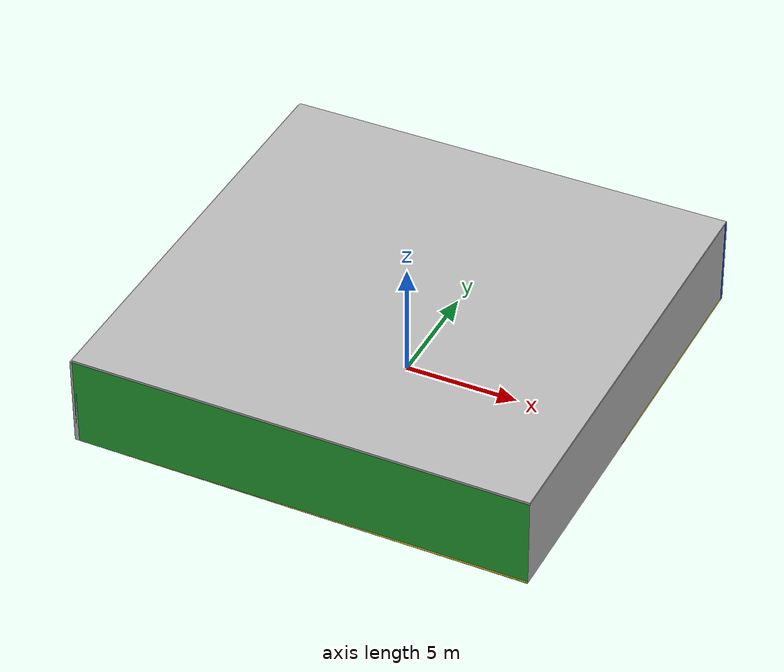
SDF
<sdf version="1.4">
 <world name="default">
  <physics type="ode">
   <max_step_size>0.001</max_step_size>
   <real_time_factor>1</real_time_factor>
   <real_time_update_rate>1000</real_time_update_rate>
   <gravity>0 0 -9.8</gravity>
  </physics>
  <scene><ambient>0.4 0.4 0.4 1</ambient><background>0.7 0.7 0.7 1</background><shadows>1</shadows></scene>
  <model name="Surrounding">
   <static>1</static>
   <link name="Ceiling">
    <collision name="Ceiling_Collision"><geometry><box><size>20 20 0.1</size></box></geometry></collision>
    <visual name="Ceiling_Visual">
     <geometry><box><size>20 20 0.1</size></box></geometry>
     <material>
      <script><uri>file://media/materials/scripts/gazebo.material</uri><name>Gazebo/Pioneer2Body</name></script>
     </material>
    </visual>
    <pose>0 0 4.05 0 0 0</pose>
   </link>
   <link name="Wall_South">
    <collision name="Wall_South_Collision">
     <geometry><box><size>20 0 4</size></box></geometry>
     <pose>0 0 2 0 -0 0</pose>
    </collision>
    <visual name="Wall_South_Visual">
     <pose>0 0 2 0 -0 0</pose>
     <geometry><box><size>20 0 4</size></box></geometry>
     <material>
      <script><uri>file://media/materials/scripts/gazebo.material</uri><name>Gazebo/GreenGlow</name></script>
     </material>
    </visual>
    <velocity_decay><linear>0</linear><angular>0</angular></velocity_decay>
    <pose>0 -10 0 0 -0 0</pose>
   </link>
   <link name="Wall_East">
    <collision name="Wall_21_Collision">
     <geometry><box><size>20 0 4</size></box></geometry>
     <pose>0 0 2 0 -0 0</pose>
    </collision>
    <visual name="Wall_21_Visual">
     <pose>0 0 2 0 -0 0</pose>
     <geometry><box><size>20 0 4</size></box></geometry>
     <material>
      <script><uri>file://media/materials/scripts/gazebo.material</uri><name>Gazebo/LightOn</name></script>
     </material>
    </visual>
    <velocity_decay><linear>0</linear><angular>0</angular></velocity_decay>
    <pose>10 0 0 0 -0 1.5708</pose>
   </link>
   <link name="Wall_North">
    <collision name="Wall_22_Collision">
     <geometry><box><size>20 0.2 4</size></box></geometry>
     <pose>0 0 2 0 -0 0</pose>
    </collision>
    <visual name="Wall_22_Visual">
     <pose>0 0 2 0 -0 0</pose>
     <geometry><box><size>20 0.2 4</size></box></geometry>
     <material>
      <script><uri>file://media/materials/scripts/gazebo.material</uri><name>Gazebo/BlueLaser</name></script>
     </material>
    </visual>
    <velocity_decay><linear>0</linear><angular>0</angular></velocity_decay>
    <pose>0 10 0 0 -0 0</pose>
   </link>
   <link name="Wall_West">
    <collision name="Wall_23_Collision">
     <geometry><box><size>20 0.2 4</size></box></geometry>
     <pose>0 0 2 0 -0 0</pose>
    </collision>
    <visual name="Wall_23_Visual">
     <pose>0 0 2 0 -0 0</pose>
     <geometry><box><size>20 0.2 4</size></box></geometry>
     <material>
      <script><uri>file://media/materials/scripts/gazebo.material</uri><name>Gazebo/CloudySky</name></script>
     </material>
    </visual>
    <velocity_decay><linear>0</linear><angular>0</angular></velocity_decay>
    <pose>-10 0 0 0 0 -1.5708</pose>
   </link>
   <link name="Ground_link">
    <collision name="collision">
     <pose>0 0 .05 0 -0 0</pose>
     <geometry><box><size>20 20 0.1</size></box></geometry>
    </collision>
    <visual name="visual">
     <pose>0 0 .05 0 -0 0</pose>
     <geometry><box><size>20 20 0.1</size></box></geometry>
     <material>
      <script><uri>file://media/materials/scripts/gazebo.material</uri><name>Gazebo/Yellow</name></script>
     </material>
    </visual>
   </link>
   <static>1</static>
  </model>
  <spherical_coordinates>
   <surface_model>EARTH_WGS84</surface_model>
   <latitude_deg>0</latitude_deg>
   <longitude_deg>0</longitude_deg>
   <elevation>0</elevation>
   <heading_deg>0</heading_deg>
  </spherical_coordinates>
  <light name="lightball_0" type="diffuse">
   <diffuse>0.8 0.8 0.8 1</diffuse>
   <specular>0.2 0.2 0.2 1</specular>
   <attenuation>
    <range>100</range>
    <constant>0.7</constant>
    <linear>0.01</linear>
    <quadratic>0.001</quadratic>
   </attenuation>
   <direction>-0.5 0.1 -0.9</direction>
   <pose>0.635790091996 -6.98932601665 3.45520818485 0 0 0</pose>
  </light>
  <light name="lightball_1" type="diffuse">
   <diffuse>0.8 0.8 0.8 1</diffuse>
   <specular>0.2 0.2 0.2 1</specular>
   <attenuation>
    <range>100</range>
    <constant>0.7</constant>
    <linear>0.01</linear>
    <quadratic>0.001</quadratic>
   </attenuation>
   <direction>-0.5 0.1 -0.9</direction>
   <pose>2.84061951563 5.09793412659 1.07602377094 0 0 0</pose>
  </light>
  <light name="lightball_2" type="diffuse">
   <diffuse>0.8 0.8 0.8 1</diffuse>
   <specular>0.2 0.2 0.2 1</specular>
   <attenuation>
    <range>100</range>
    <constant>0.7</constant>
    <linear>0.01</linear>
    <quadratic>0.001</quadratic>
   </attenuation>
   <direction>-0.5 0.1 -0.9</direction>
   <pose>9.69498057673 0.71310536121 1.66221764504 0 0 0</pose>
  </light>
  <light name="lightball_3" type="diffuse">
   <diffuse>0.8 0.8 0.8 1</diffuse>
   <specular>0.2 0.2 0.2 1</specular>
   <attenuation>
    <range>100</range>
    <constant>0.7</constant>
    <linear>0.01</linear>
    <quadratic>0.001</quadratic>
   </attenuation>
   <direction>-0.5 0.1 -0.9</direction>
   <pose>-8.94232352169 -4.17901317589 1.20630599728 0 0 0</pose>
  </light>
  <light name="lightball_4" type="diffuse">
   <diffuse>0.8 0.8 0.8 1</diffuse>
   <specular>0.2 0.2 0.2 1</specular>
   <attenuation>
    <range>100</range>
    <constant>0.7</constant>
    <linear>0.01</linear>
    <quadratic>0.001</quadratic>
   </attenuation>
   <direction>-0.5 0.1 -0.9</direction>
   <pose>-9.79133184987 -6.33414359005 1.75371324823 0 0 0</pose>
  </light>
  <light name="lightball_5" type="diffuse">
   <diffuse>0.8 0.8 0.8 1</diffuse>
   <specular>0.2 0.2 0.2 1</specular>
   <attenuation>
    <range>100</range>
    <constant>0.7</constant>
    <linear>0.01</linear>
    <quadratic>0.001</quadratic>
   </attenuation>
   <direction>-0.5 0.1 -0.9</direction>
   <pose>-4.20840883876 -2.2429179759 2.72129859994 0 0 0</pose>
  </light>
  <light name="lightball_6" type="diffuse">
   <diffuse>0.8 0.8 0.8 1</diffuse>
   <specular>0.2 0.2 0.2 1</specular>
   <attenuation>
    <range>100</range>
    <constant>0.7</constant>
    <linear>0.01</linear>
    <quadratic>0.001</quadratic>
   </attenuation>
   <direction>-0.5 0.1 -0.9</direction>
   <pose>8.14701366689 -3.69055051018 2.06331770871 0 0 0</pose>
  </light>
  <light name="lightball_7" type="diffuse">
   <diffuse>0.8 0.8 0.8 1</diffuse>
   <specular>0.2 0.2 0.2 1</specular>
   <attenuation>
    <range>100</range>
    <constant>0.7</constant>
    <linear>0.01</linear>
    <quadratic>0.001</quadratic>
   </attenuation>
   <direction>-0.5 0.1 -0.9</direction>
   <pose>-2.57802386666 9.61031258911 3.21284627877 0 0 0</pose>
  </light>
  <light name="lightball_8" type="diffuse">
   <diffuse>0.8 0.8 0.8 1</diffuse>
   <specular>0.2 0.2 0.2 1</specular>
   <attenuation>
    <range>100</range>
    <constant>0.7</constant>
    <linear>0.01</linear>
    <quadratic>0.001</quadratic>
   </attenuation>
   <direction>-0.5 0.1 -0.9</direction>
   <pose>2.29063771697 8.9040845858 3.38911466192 0 0 0</pose>
  </light>
  <include><uri>model://cabinet</uri><pose>-6.31752492273 -4.22246972028 0 0 0 2.98105203711</pose></include>
  <include><uri>model://table</uri><pose>-8.58263499028 -0.962835134372 0 0 0 2.29072578096</pose></include>
  <include>
   <uri>model://robocup_3Dsim_goal</uri>
   <pose>-4.17028479202 7.3493986933 0 0 0 1.50091423554</pose>
  </include>
  <include><uri>model://cabinet</uri><pose>2.00744462323 -3.59223338613 0 0 0 0.862345270543</pose></include>
  <include>
   <uri>model://textured_shapes</uri>
   <pose>1.45033727742 -1.0028960756 0 0 0 1.68616278896</pose>
  </include>
  <include>
   <uri>model://construction_cone</uri>
   <pose>1.12240799744 5.31475555686 0 0 0 2.24055515313</pose>
  </include>
  <include><uri>model://cabinet</uri><pose>4.45420511199 1.75478805121 0 0 0 2.03707425622</pose></include>
  <include><uri>model://cabinet</uri><pose>8.09378250849 0.613160267665 0 0 0 2.30946134106</pose></include>
 </world>
</sdf>

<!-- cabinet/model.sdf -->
<sdf version="1.5">
  <model name="cabinet">
    <static>true</static>
    <link name="cabinet_bottom_plate">
      <inertial>
        <pose>0 0 -1 0 0 0</pose>
        <inertia>
          <ixx>2.050000</ixx>
          <ixy>0</ixy>
          <ixz>0</ixz>
          <iyy>2.050000</iyy>
          <iyz>0</iyz>
          <izz>2.050000</izz>
        </inertia>
        <mass>25.000000</mass>
      </inertial>
      <collision name="cabinet_bottom_plate_geom">
        <pose>0 0 0.010000 0 0 0</pose>
        <geometry>
          <box>
            <size>0.450000 0.450000 0.020000</size>
          </box>
        </geometry>
      </collision>
      <visual name="cabinet_bottom_plate_geom_visual">
        <pose>0 0 0.010000 0 0 0</pose>
        <geometry>
          <box>
            <size>0.450000 0.450000 0.020000</size>
          </box>
        </geometry>
        <material>
          <script>
            <uri>model://media/materials/scripts/gazebo.material</uri>
            <name>Gazebo/Wood</name>
          </script>
        </material>
      </visual>
      <collision name="cabinet_bottom_plate_geom_cabinet_back_plate">
        <pose>0.235000 0 0.510000 0 0 0</pose>
        <geometry>
          <box>
            <size>0.020000 0.450000 1.020000</size>
          </box>
        </geometry>
      </collision>
      <visual name="cabinet_bottom_plate_geom_cabinet_back_plate_visual">
        <pose>0.235000 0 0.510000 0 0 0</pose>
        <geometry>
          <box>
            <size>0.020000 0.450000 1.020000</size>
          </box>
        </geometry>
        <material>
          <script>
            <uri>model://media/materials/scripts/gazebo.material</uri>
            <name>Gazebo/Wood</name>
          </script>
        </material>
      </visual>
      <collision name="cabinet_bottom_plate_geom_cabinet_left_plate">
        <pose>0 0.235000 0.510000 0 0 0</pose>
        <geometry>
          <box>
            <size>0.450000 0.020000 1.020000</size>
          </box>
        </geometry>
      </collision>
      <visual name="cabinet_bottom_plate_geom_cabinet_left_plate_visual">
        <pose>0 0.235000 0.510000 0 0 0</pose>
        <geometry>
          <box>
            <size>0.450000 0.020000 1.020000</size>
          </box>
        </geometry>
        <material>
          <script>
            <uri>model://media/materials/scripts/gazebo.material</uri>
            <name>Gazebo/Wood</name>
          </script>
        </material>
      </visual>
      <collision name="cabinet_bottom_plate_geom_cabinet_middle_plate">
        <pose>0 0 0.510000 0 0 0</pose>
        <geometry>
          <box>
            <size>0.450000 0.450000 0.020000</size>
          </box>
        </geometry>
      </collision>
      <visual name="cabinet_bottom_plate_geom_cabinet_middle_plate_visual">
        <pose>0 0 0.510000 0 0 0</pose>
        <geometry>
          <box>
            <size>0.450000 0.450000 0.020000</size>
          </box>
        </geometry>
        <material>
          <script>
            <uri>model://media/materials/scripts/gazebo.material</uri>
            <name>Gazebo/Wood</name>
          </script>
        </material>
      </visual>
      <collision name="cabinet_bottom_plate_geom_cabinet_right_plate">
        <pose>0 -0.235000 0.510000 0 0 0</pose>
        <geometry>
          <box>
            <size>0.450000 0.020000 1.020000</size>
          </box>
        </geometry>
      </collision>
      <visual name="cabinet_bottom_plate_geom_cabinet_right_plate_visual">
        <pose>0 -0.235000 0.510000 0 0 0</pose>
        <geometry>
          <box>
            <size>0.450000 0.020000 1.020000</size>
          </box>
        </geometry>
        <material>
          <script>
            <uri>model://media/materials/scripts/gazebo.material</uri>
            <name>Gazebo/Wood</name>
          </script>
        </material>
      </visual>
      <collision name="cabinet_bottom_plate_geom_cabinet_top_plate">
        <pose>0 0 1.010000 0 0 0</pose>
        <geometry>
          <box>
            <size>0.450000 0.450000 0.020000</size>
          </box>
        </geometry>
      </collision>
      <visual name="cabinet_bottom_plate_geom_cabinet_top_plate_visual">
        <pose>0 0 1.010000 0 0 0</pose>
        <geometry>
          <box>
            <size>0.450000 0.450000 0.020000</size>
          </box>
        </geometry>
        <material>
          <script>
            <uri>model://media/materials/scripts/gazebo.material</uri>
            <name>Gazebo/Wood</name>
          </script>
        </material>
      </visual>
    </link>
  </model>
</sdf>

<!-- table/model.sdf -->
<sdf version="1.5">
  <model name="table">
    <static>true</static>
    <link name="link">
      <collision name="surface">
        <pose>0 0 1.0 0 0 0</pose>
        <geometry>
          <box>
            <size>1.5 0.8 0.03</size>
          </box>
        </geometry>
        <surface>
          <friction>
            <ode>
              <mu>0.6</mu>
              <mu2>0.6</mu2>
            </ode>
          </friction>
        </surface>
      </collision>
      <visual name="visual1">
        <pose>0 0 1.0 0 0 0</pose>
        <geometry>
          <box>
            <size>1.5 0.8 0.03</size>
          </box>
        </geometry>
        <material>
          <script>
            <uri>model://media/materials/scripts/gazebo.material</uri>
            <name>Gazebo/Wood</name>
          </script>
        </material>
      </visual>
      <collision name="front_left_leg">
        <pose>0.68 0.38 0.5 0 0 0</pose>
        <geometry>
          <cylinder>
            <radius>0.02</radius>
            <length>1.0</length>
          </cylinder>
        </geometry>
      </collision>
      <visual name="front_left_leg">
        <pose>0.68 0.38 0.5 0 0 0</pose>
        <geometry>
          <cylinder>
            <radius>0.02</radius>
            <length>1.0</length>
          </cylinder>
        </geometry>
        <material>
          <script>
            <uri>model://media/materials/scripts/gazebo.material</uri>
            <name>Gazebo/Grey</name>
          </script>
        </material>
      </visual>
      <collision name="front_right_leg">
        <pose>0.68 -0.38 0.5 0 0 0</pose>
        <geometry>
          <cylinder>
            <radius>0.02</radius>
            <length>1.0</length>
          </cylinder>
        </geometry>
      </collision>
      <visual name="front_right_leg">
        <pose>0.68 -0.38 0.5 0 0 0</pose>
        <geometry>
          <cylinder>
            <radius>0.02</radius>
            <length>1.0</length>
          </cylinder>
        </geometry>
        <material>
          <script>
            <uri>model://media/materials/scripts/gazebo.material</uri>
            <name>Gazebo/Grey</name>
          </script>
        </material>
      </visual>
      <collision name="back_right_leg">
        <pose>-0.68 -0.38 0.5 0 0 0</pose>
        <geometry>
          <cylinder>
            <radius>0.02</radius>
            <length>1.0</length>
          </cylinder>
        </geometry>
      </collision>
      <visual name="back_right_leg">
        <pose>-0.68 -0.38 0.5 0 0 0</pose>
        <geometry>
          <cylinder>
            <radius>0.02</radius>
            <length>1.0</length>
          </cylinder>
        </geometry>
        <material>
          <script>
            <uri>model://media/materials/scripts/gazebo.material</uri>
            <name>Gazebo/Grey</name>
          </script>
        </material>
      </visual>
      <collision name="back_left_leg">
        <pose>-0.68 0.38 0.5 0 0 0</pose>
        <geometry>
          <cylinder>
            <radius>0.02</radius>
            <length>1.0</length>
          </cylinder>
        </geometry>
      </collision>
      <visual name="back_left_leg">
        <pose>-0.68 0.38 0.5 0 0 0</pose>
        <geometry>
          <cylinder>
            <radius>0.02</radius>
            <length>1.0</length>
          </cylinder>
        </geometry>
        <material>
          <script>
            <uri>model://media/materials/scripts/gazebo.material</uri>
            <name>Gazebo/Grey</name>
          </script>
        </material>
      </visual>
    </link>
  </model>
</sdf>

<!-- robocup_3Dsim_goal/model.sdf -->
<sdf version="1.5">
  <model name="robocup_3d_goal">
    <static>true</static>
    <link name="left_post">
      <pose>0 1.05 0.45 0 0 0</pose>
      <collision name="collision">
        <geometry>
          <cylinder>
            <radius>0.05</radius>
            <length>0.9</length>
          </cylinder>
        </geometry>
      </collision>
      <visual name="visual">
        <geometry>
          <cylinder>
            <radius>0.05</radius>
            <length>0.9</length>
          </cylinder>
        </geometry>
        <material>
          <script>
            <uri>file://media/materials/scripts/gazebo.material</uri>
            <name>Gazebo/ZincYellow</name>
          </script>
        </material>
      </visual>
    </link>
    <link name="left_support_horiz_lower">
      <pose>0.30 1.05 0.01 0 0 0</pose>
      <collision name="collision">
        <geometry>
          <box>
            <size>0.50 0.02 0.02</size>
          </box>
        </geometry>
      </collision>
      <visual name="visual">
        <geometry>
          <box>
            <size>0.50 0.02 0.02</size>
          </box>
        </geometry>
        <material>
          <script>
            <uri>file://media/materials/scripts/gazebo.material</uri>
            <name>Gazebo/White</name>
          </script>
        </material>
      </visual>
    </link>
    <link name="left_support_horiz_upper">
      <pose>0.30 1.05 0.79 0 0 0</pose>
      <collision name="collision">
        <geometry>
          <box>
            <size>0.50 0.02 0.02</size>
          </box>
        </geometry>
      </collision>
      <visual name="visual">
        <geometry>
          <box>
            <size>0.50 0.02 0.02</size>
          </box>
        </geometry>
        <material>
          <script>
            <uri>file://media/materials/scripts/gazebo.material</uri>
            <name>Gazebo/White</name>
          </script>
        </material>
      </visual>
    </link>
    <link name="left_support_vertical">
      <pose>0.56 1.05 0.4 0 1.5708 0</pose>
      <collision name="collision">
        <geometry>
          <box>
            <size>0.80 0.02 0.02</size>
          </box>
        </geometry>
      </collision>
      <visual name="visual">
        <geometry>
          <box>
            <size>0.80 0.02 0.02</size>
          </box>
        </geometry>
        <material>
          <script>
            <uri>file://media/materials/scripts/gazebo.material</uri>
            <name>Gazebo/White</name>
          </script>
        </material>
      </visual>
    </link>
    <link name="right_support_horiz_lower">
      <pose>0.30 -1.05 0.01 0 0 0</pose>
      <collision name="collision">
        <geometry>
          <box>
            <size>0.50 0.02 0.02</size>
          </box>
        </geometry>
      </collision>
      <visual name="visual">
        <geometry>
          <box>
            <size>0.50 0.02 0.02</size>
          </box>
        </geometry>
        <material>
          <script>
            <uri>file://media/materials/scripts/gazebo.material</uri>
            <name>Gazebo/White</name>
          </script>
        </material>
      </visual>
    </link>
    <link name="right_support_horiz_upper">
      <pose>0.30 -1.05 0.79 0 0 0</pose>
      <collision name="collision">
        <geometry>
          <box>
            <size>0.50 0.02 0.02</size>
          </box>
        </geometry>
      </collision>
      <visual name="visual">
        <geometry>
          <box>
            <size>0.50 0.02 0.02</size>
          </box>
        </geometry>
        <material>
          <script>
            <uri>file://media/materials/scripts/gazebo.material</uri>
            <name>Gazebo/White</name>
          </script>
        </material>
      </visual>
    </link>
    <link name="right_support_vertical">
      <pose>0.56 -1.05 0.4 0 1.5708 0</pose>
      <collision name="collision">
        <geometry>
          <box>
            <size>0.80 0.02 0.02</size>
          </box>
        </geometry>
      </collision>
      <visual name="visual">
        <geometry>
          <box>
            <size>0.80 0.02 0.02</size>
          </box>
        </geometry>
        <material>
          <script>
            <uri>file://media/materials/scripts/gazebo.material</uri>
            <name>Gazebo/White</name>
          </script>
        </material>
      </visual>
    </link>
    <link name="center_support_horiz_lower">
      <pose>0.56 0 0.01 0 1.5708 0</pose>
      <collision name="collision">
        <geometry>
          <box>
            <size>0.02 2.08 0.02</size>
          </box>
        </geometry>
      </collision>
      <visual name="visual">
        <geometry>
          <box>
            <size>0.02 2.08 0.02</size>
          </box>
        </geometry>
        <material>
          <script>
            <uri>file://media/materials/scripts/gazebo.material</uri>
            <name>Gazebo/White</name>
          </script>
        </material>
      </visual>
    </link>
    <link name="center_support_horiz_upper">
      <pose>0.56 0 0.79 0 1.5708 0</pose>
      <collision name="collision">
        <geometry>
          <box>
            <size>0.02 2.08 0.02</size>
          </box>
        </geometry>
      </collision>
      <visual name="visual">
        <geometry>
          <box>
            <size>0.02 2.08 0.02</size>
          </box>
        </geometry>
        <material>
          <script>
            <uri>file://media/materials/scripts/gazebo.material</uri>
            <name>Gazebo/White</name>
          </script>
        </material>
      </visual>
    </link>
    <link name="right_post">
      <pose>0 -1.05 0.45 0 0 0</pose>
      <collision name="collision">
        <geometry>
          <cylinder>
            <radius>0.05</radius>
            <length>0.9</length>
          </cylinder>
        </geometry>
      </collision>
      <visual name="visual">
        <geometry>
          <cylinder>
            <radius>0.05</radius>
            <length>0.9</length>
          </cylinder>
        </geometry>
        <material>
          <script>
            <uri>file://media/materials/scripts/gazebo.material</uri>
            <name>Gazebo/ZincYellow</name>
          </script>
        </material>
      </visual>
    </link>
    <link name="crossbar">
      <pose>0 0 0.85 1.57 1.57 0</pose>
      <collision name="collision">
        <geometry>
          <cylinder>
            <radius>0.05</radius>
            <length>2.0</length>
          </cylinder>
        </geometry>
      </collision>
      <visual name="visual">
        <geometry>
          <cylinder>
            <radius>0.05</radius>
            <length>2.0</length>
          </cylinder>
        </geometry>
        <material>
          <script>
            <uri>file://media/materials/scripts/gazebo.material</uri>
            <name>Gazebo/ZincYellow</name>
          </script>
        </material>
      </visual>
    </link>
    <link name="center_net">
      <pose>0.56 0 0.40 0 0 0</pose>
      <collision name="collision">
        <geometry>
          <box>
            <size>0.01 2.1 0.80</size>
          </box>
        </geometry>
      </collision>
      <visual name="visual">
        <geometry>
          <box>
            <size>0.01 2.1 0.80</size>
          </box>
        </geometry>
        <material>
          <script>
            <uri>model://../model_source/models/robocup09_spl_field/materials/scripts/</uri>
            <uri>model://../model_source/models/robocup09_spl_field/materials/textures/</uri>
            <name>RoboCup/Net</name>
          </script>
        </material>
      </visual>
    </link>
    <link name="left_net">
      <pose>0.30 1.05 0.40 0 0 0</pose>
      <collision name="collision">
        <geometry>
          <box>
            <size>0.50 0.01 0.76</size>
          </box>
        </geometry>
      </collision>
      <visual name="visual">
        <geometry>
          <box>
            <size>0.50 0.01 0.76</size>
          </box>
        </geometry>
        <material>
          <script>
            <uri>model://../model_source/models/robocup09_spl_field/materials/scripts/</uri>
            <uri>model://../model_source/models/robocup09_spl_field/materials/textures/</uri>
            <name>RoboCup/Net</name>
          </script>
        </material>
      </visual>
    </link>
    <link name="right_net">
      <pose>0.30 -1.05 0.40 0 0 0</pose>
      <collision name="collision">
        <geometry>
          <box>
            <size>0.50 0.01 0.76</size>
          </box>
        </geometry>
      </collision>
      <visual name="visual">
        <geometry>
          <box>
            <size>0.50 0.01 0.76</size>
          </box>
        </geometry>
        <material>
          <script>
            <uri>model://../model_source/models/robocup09_spl_field/materials/scripts/</uri>
            <uri>model://../model_source/models/robocup09_spl_field/materials/textures/</uri>
            <name>RoboCup/Net</name>
          </script>
        </material>
      </visual>
    </link>
  </model>
</sdf>

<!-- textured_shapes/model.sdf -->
<sdf version="1.6">
  <model name="textured_shapes">
    <pose>0 0 0.5 0 0 0</pose>
    <link name="box">
      <pose>0 -1.5 0 0 0 0</pose>
      <collision name="collision">
        <geometry>
          <box>
            <size>1 1 1</size>
          </box>
        </geometry>
      </collision>
      <visual name="visual">
        <geometry>
          <box>
            <size>1 1 1</size>
          </box>
        </geometry>
        <material>
          <script>
            <uri>model://../model_source/models/textured_shapes/materials/scripts</uri>
            <uri>model://../model_source/models/textured_shapes/materials/textures</uri>
            <name>TexturedShape/Squares</name>
          </script>
        </material>
      </visual>
    </link>
    <link name="sphere">
      <collision name="collision">
        <geometry>
          <sphere>
            <radius>0.5</radius>
          </sphere>
        </geometry>
      </collision>
      <visual name="visual">
        <geometry>
          <sphere>
            <radius>0.5</radius>
          </sphere>
        </geometry>
        <material>
          <script>
            <uri>model://../model_source/models/textured_shapes/materials/scripts</uri>
            <uri>model://../model_source/models/textured_shapes/materials/textures</uri>
            <name>TexturedShape/Squares</name>
          </script>
        </material>
      </visual>
    </link>
    <link name="cylinder">
      <pose>0 1.5 0 0 0 0</pose>
      <collision name="collision">
        <geometry>
          <cylinder>
            <radius>0.5</radius>
            <length>1</length>
          </cylinder>
        </geometry>
      </collision>
      <visual name="visual">
        <geometry>
          <cylinder>
            <radius>0.5</radius>
            <length>1</length>
          </cylinder>
        </geometry>
        <material>
          <script>
            <uri>model://../model_source/models/textured_shapes/materials/scripts</uri>
            <uri>model://../model_source/models/textured_shapes/materials/textures</uri>
            <name>TexturedShape/Squares</name>
          </script>
        </material>
      </visual>
    </link>
  </model>
</sdf>

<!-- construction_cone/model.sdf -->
<sdf version="1.5">
  <model name="Construction Cone">
    <link name="link">
      <collision name="collision">
        <geometry>
          <mesh>
            <scale>10 10 10</scale>
            <uri>file://isr-testbed/construction_cone/meshes/construction_cone.dae</uri>
          </mesh>
        </geometry>
      </collision>
      <visual name="visual">
        <geometry>
          <mesh>
            <scale>10 10 10</scale>
            <uri>file://isr-testbed/construction_cone/meshes/construction_cone.dae</uri>
          </mesh>
        </geometry>
      </visual>
    </link>
  </model>
</sdf>
